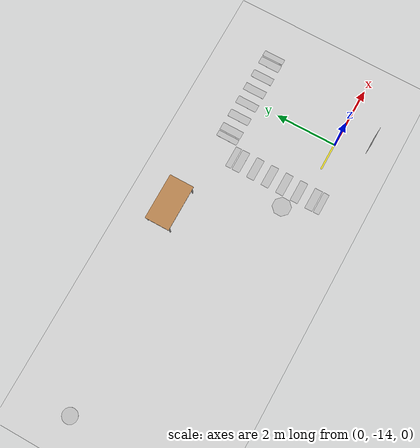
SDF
<sdf version="1.6">
 <world name="default">
  <model name="ground_plane">
   <static>1</static>
   <link name="link">
    <collision name="collision">
     <geometry><plane><normal>0 0 1</normal><size>100 100</size></plane></geometry>
     <surface><friction><ode><mu>100</mu><mu2>50</mu2></ode></friction></surface>
    </collision>
    <visual name="visual">
     <cast_shadows>0</cast_shadows>
     <geometry><plane><normal>0 0 1</normal><size>100 100</size></plane></geometry>
     <material>
      <script><uri>file://media/materials/scripts/gazebo.material</uri><name>Gazebo/Grey</name></script>
     </material>
    </visual>
   </link>
  </model>
  <model name="line2m_4">
   <link name="link_0">
    <inertial>
     <mass>1</mass>
     <inertia>
      <ixx>0.166667</ixx>
      <ixy>0</ixy>
      <ixz>0</ixz>
      <iyy>0.166667</iyy>
      <iyz>0</iyz>
      <izz>0.166667</izz>
     </inertia>
    </inertial>
    <visual name="visual">
     <geometry><box><size>2 0.05 0.001</size></box></geometry>
     <material>
      <lighting>1</lighting>
      <script><uri>file://media/materials/scripts/gazebo.material</uri><name>Gazebo/Yellow</name></script>
     </material>
    </visual>
   </link>
   <static>1</static>
   <pose>0.123613 -13.9727 0 0 -0 0</pose>
  </model>
  <model name="crosswalk_7">
   <link name="link_0">
    <inertial>
     <mass>1</mass>
     <inertia>
      <ixx>0.166667</ixx>
      <ixy>0</ixy>
      <ixz>0</ixz>
      <iyy>0.166667</iyy>
      <iyz>0</iyz>
      <izz>0.166667</izz>
     </inertia>
    </inertial>
    <visual name="visual">
     <pose>0.25 0 0 0 -0 0</pose>
     <geometry><box><size>0.25 0.7 0.001</size></box></geometry>
     <material><lighting>1</lighting></material>
    </visual>
    <visual name="ModelPreview_0::link_0::visual_1">
     <pose>0.75 0 0 0 -0 0</pose>
     <geometry><box><size>0.25 0.7 0.001</size></box></geometry>
     <material><lighting>1</lighting></material>
    </visual>
    <visual name="ModelPreview_0::link_0::visual_2">
     <pose>1.25 0 0 0 -0 0</pose>
     <geometry><box><size>0.25 0.7 0.001</size></box></geometry>
     <material><lighting>1</lighting></material>
    </visual>
    <visual name="ModelPreview_0::link_0::visual_3">
     <pose>-0.25 0 0 0 -0 0</pose>
     <geometry><box><size>0.25 0.7 0.001</size></box></geometry>
     <material><lighting>1</lighting></material>
    </visual>
    <visual name="ModelPreview_0::link_0::visual_4">
     <pose>-0.75 0 0 0 -0 0</pose>
     <geometry><box><size>0.25 0.7 0.001</size></box></geometry>
     <material><lighting>1</lighting></material>
    </visual>
    <visual name="ModelPreview_0::link_0::visual_5">
     <pose>-1.25 0 0 0 -0 0</pose>
     <geometry><box><size>0.25 0.7 0.001</size></box></geometry>
     <material><lighting>1</lighting></material>
    </visual>
    <visual name="ModelPreview_0::link_0::visual_6">
     <pose>-1.6 0.35 0 -1.5708 -0 -1.5708</pose>
     <geometry>
      <mesh><uri>model://crosswalk/model/Warning+sign+confined+space/model.dae</uri><scale>2.35 2 0.9</scale></mesh>
     </geometry>
    </visual>
    <visual name="ModelPreview_0::link_0::visual_7">
     <pose>1.6 -0.35 0 -1.5708 0 1.5708</pose>
     <geometry>
      <mesh><uri>model://crosswalk/model/Warning+sign+confined+space/model.dae</uri><scale>2.35 2 0.9</scale></mesh>
     </geometry>
     <material><lighting>1</lighting></material>
    </visual>
   </link>
   <static>1</static>
   <pose>0.13411 -10.9998 0 0 -0 0</pose>
  </model>
  <model name="crosswalk_10">
   <link name="link_0">
    <inertial>
     <mass>1</mass>
     <inertia>
      <ixx>0.166667</ixx>
      <ixy>0</ixy>
      <ixz>0</ixz>
      <iyy>0.166667</iyy>
      <iyz>0</iyz>
      <izz>0.166667</izz>
     </inertia>
    </inertial>
    <visual name="visual">
     <pose>0.25 0 0 0 -0 0</pose>
     <geometry><box><size>0.25 0.7 0.001</size></box></geometry>
     <material><lighting>1</lighting></material>
    </visual>
    <visual name="ModelPreview_0::link_0::visual_1">
     <pose>0.75 0 0 0 -0 0</pose>
     <geometry><box><size>0.25 0.7 0.001</size></box></geometry>
     <material><lighting>1</lighting></material>
    </visual>
    <visual name="ModelPreview_0::link_0::visual_2">
     <pose>1.25 0 0 0 -0 0</pose>
     <geometry><box><size>0.25 0.7 0.001</size></box></geometry>
     <material><lighting>1</lighting></material>
    </visual>
    <visual name="ModelPreview_0::link_0::visual_3">
     <pose>-0.25 0 0 0 -0 0</pose>
     <geometry><box><size>0.25 0.7 0.001</size></box></geometry>
     <material><lighting>1</lighting></material>
    </visual>
    <visual name="ModelPreview_0::link_0::visual_4">
     <pose>-0.75 0 0 0 -0 0</pose>
     <geometry><box><size>0.25 0.7 0.001</size></box></geometry>
     <material><lighting>1</lighting></material>
    </visual>
    <visual name="ModelPreview_0::link_0::visual_5">
     <pose>-1.25 0 0 0 -0 0</pose>
     <geometry><box><size>0.25 0.7 0.001</size></box></geometry>
     <material><lighting>1</lighting></material>
    </visual>
    <visual name="ModelPreview_0::link_0::visual_6">
     <pose>-1.6 0.35 0 -1.5708 -0 -1.5708</pose>
     <geometry>
      <mesh><uri>model://crosswalk/model/Warning+sign+confined+space/model.dae</uri><scale>2.35 2 0.9</scale></mesh>
     </geometry>
    </visual>
    <visual name="ModelPreview_0::link_0::visual_7">
     <pose>1.6 -0.35 0 -1.5708 0 1.5708</pose>
     <geometry>
      <mesh><uri>model://crosswalk/model/Warning+sign+confined+space/model.dae</uri><scale>2.35 2 0.9</scale></mesh>
     </geometry>
     <material><lighting>1</lighting></material>
    </visual>
   </link>
   <static>1</static>
   <pose>-1.83967 -12.9687 0 0 -0 1.5708</pose>
  </model>
  <model name="stopSign_7">
   <link name="link_0">
    <inertial>
     <mass>1</mass>
     <inertia><ixx>0.145833</ixx><ixy>0</ixy><ixz>0</ixz><iyy>0.145833</iyy><iyz>0</iyz><izz>0.125</izz></inertia>
    </inertial>
    <visual name="visual">
     <geometry><mesh><uri>model://stopSign/model/model.dae</uri><scale>1 1 0.1</scale></mesh></geometry>
     <material><lighting>1</lighting></material>
    </visual>
   </link>
   <static>1</static>
   <pose>-2.77388 -13.1988 0 0 0 -1.5708</pose>
  </model>
  <model name="noForklift">
   <link name="link_3">
    <inertial>
     <mass>1</mass>
     <inertia>
      <ixx>0.166667</ixx>
      <ixy>0</ixy>
      <ixz>0</ixz>
      <iyy>0.166667</iyy>
      <iyz>0</iyz>
      <izz>0.166667</izz>
     </inertia>
    </inertial>
    <visual name="ModelPreview_6::link_3::visual_9">
     <pose>-0.08 -0.31 0 0 -0 1</pose>
     <geometry>
      <mesh><uri>model://noForklift/model/model.dae</uri><scale>0.266 0.266 0.266</scale></mesh>
     </geometry>
     <material><lighting>1</lighting></material>
    </visual>
    <collision name="collision_9">
     <geometry><cylinder><radius>0.25</radius><length>0.001</length></cylinder></geometry>
     <surface>
      <friction>
       <ode><mu>1</mu><mu2>1</mu2><fdir1>0 0 0</fdir1><slip1>0</slip1><slip2>0</slip2></ode>
       <torsional>
        <coefficient>1</coefficient>
        <patch_radius>0</patch_radius>
        <surface_radius>0</surface_radius>
        <use_patch_radius>1</use_patch_radius>
        <ode><slip>0</slip></ode>
       </torsional>
      </friction>
      <bounce><restitution_coefficient>0</restitution_coefficient><threshold>1e+06</threshold></bounce>
      <contact>
       <collide_without_contact>0</collide_without_contact>
       <collide_without_contact_bitmask>1</collide_without_contact_bitmask>
       <collide_bitmask>1</collide_bitmask>
       <ode>
        <soft_cfm>0</soft_cfm>
        <soft_erp>0.2</soft_erp>
        <kp>1e+13</kp>
        <kd>1</kd>
        <max_vel>0.01</max_vel>
        <min_depth>0</min_depth>
       </ode>
       <bullet>
        <split_impulse>1</split_impulse>
        <split_impulse_penetration_threshold>-0.01</split_impulse_penetration_threshold>
        <soft_cfm>0</soft_cfm>
        <soft_erp>0.2</soft_erp>
        <kp>1e+13</kp>
        <kd>1</kd>
       </bullet>
      </contact>
     </surface>
    </collision>
   </link>
   <static>1</static>
   <pose>-10.83 -11.2276 0 0 0 -1.5708</pose>
  </model>
  <model name="table_4">
   <static>1</static>
   <link name="link">
    <collision name="surface">
     <pose>0 0 1 0 -0 0</pose>
     <geometry><box><size>1.5 0.8 0.03</size></box></geometry>
     <surface><friction><ode><mu>0.6</mu><mu2>0.6</mu2></ode></friction></surface>
    </collision>
    <visual name="visual1">
     <pose>0 0 1 0 -0 0</pose>
     <geometry><box><size>1.5 0.8 0.03</size></box></geometry>
     <material>
      <script><uri>file://media/materials/scripts/gazebo.material</uri><name>Gazebo/Wood</name></script>
     </material>
    </visual>
    <collision name="front_left_leg">
     <pose>0.68 0.38 0.5 0 -0 0</pose>
     <geometry><cylinder><radius>0.02</radius><length>1</length></cylinder></geometry>
    </collision>
    <visual name="front_left_leg">
     <pose>0.68 0.38 0.5 0 -0 0</pose>
     <geometry><cylinder><radius>0.02</radius><length>1</length></cylinder></geometry>
     <material>
      <script><uri>file://media/materials/scripts/gazebo.material</uri><name>Gazebo/Grey</name></script>
     </material>
    </visual>
    <collision name="front_right_leg">
     <pose>0.68 -0.38 0.5 0 -0 0</pose>
     <geometry><cylinder><radius>0.02</radius><length>1</length></cylinder></geometry>
    </collision>
    <visual name="front_right_leg">
     <pose>0.68 -0.38 0.5 0 -0 0</pose>
     <geometry><cylinder><radius>0.02</radius><length>1</length></cylinder></geometry>
     <material>
      <script><uri>file://media/materials/scripts/gazebo.material</uri><name>Gazebo/Grey</name></script>
     </material>
    </visual>
    <collision name="back_right_leg">
     <pose>-0.68 -0.38 0.5 0 -0 0</pose>
     <geometry><cylinder><radius>0.02</radius><length>1</length></cylinder></geometry>
    </collision>
    <visual name="back_right_leg">
     <pose>-0.68 -0.38 0.5 0 -0 0</pose>
     <geometry><cylinder><radius>0.02</radius><length>1</length></cylinder></geometry>
     <material>
      <script><uri>file://media/materials/scripts/gazebo.material</uri><name>Gazebo/Grey</name></script>
     </material>
    </visual>
    <collision name="back_left_leg">
     <pose>-0.68 0.38 0.5 0 -0 0</pose>
     <geometry><cylinder><radius>0.02</radius><length>1</length></cylinder></geometry>
    </collision>
    <visual name="back_left_leg">
     <pose>-0.68 0.38 0.5 0 -0 0</pose>
     <geometry><cylinder><radius>0.02</radius><length>1</length></cylinder></geometry>
     <material>
      <script><uri>file://media/materials/scripts/gazebo.material</uri><name>Gazebo/Grey</name></script>
     </material>
    </visual>
   </link>
   <pose>-4.10578 -10.54 -0.5 0 -0 0</pose>
  </model>
  <model name="120x90sign_sitesafety_0">
   <link name="link_0">
    <inertial>
     <mass>1</mass>
     <inertia>
      <ixx>0.166667</ixx>
      <ixy>0</ixy>
      <ixz>0</ixz>
      <iyy>0.166667</iyy>
      <iyz>0</iyz>
      <izz>0.166667</izz>
     </inertia>
    </inertial>
    <visual name="visual">
     <pose>-0.3 0 -0.45 0 -0 0</pose>
     <geometry>
      <mesh><uri>model://120x90sign_sitesafety/model/model.dae</uri><scale>2 1 4.4</scale></mesh>
     </geometry>
     <material><lighting>1</lighting></material>
    </visual>
    <collision name="collision">
     <geometry><box><size>0.6 0.005 0.9</size></box></geometry>
     <surface>
      <friction>
       <ode><mu>1</mu><mu2>1</mu2><fdir1>0 0 0</fdir1><slip1>0</slip1><slip2>0</slip2></ode>
       <torsional>
        <coefficient>1</coefficient>
        <patch_radius>0</patch_radius>
        <surface_radius>0</surface_radius>
        <use_patch_radius>1</use_patch_radius>
        <ode><slip>0</slip></ode>
       </torsional>
      </friction>
      <bounce><restitution_coefficient>0</restitution_coefficient><threshold>1e+06</threshold></bounce>
      <contact>
       <collide_without_contact>0</collide_without_contact>
       <collide_without_contact_bitmask>1</collide_without_contact_bitmask>
       <collide_bitmask>1</collide_bitmask>
       <ode>
        <soft_cfm>0</soft_cfm>
        <soft_erp>0.2</soft_erp>
        <kp>1e+13</kp>
        <kd>1</kd>
        <max_vel>0.01</max_vel>
        <min_depth>0</min_depth>
       </ode>
       <bullet>
        <split_impulse>1</split_impulse>
        <split_impulse_penetration_threshold>-0.01</split_impulse_penetration_threshold>
        <soft_cfm>0</soft_cfm>
        <soft_erp>0.2</soft_erp>
        <kp>1e+13</kp>
        <kd>1</kd>
       </bullet>
      </contact>
     </surface>
    </collision>
   </link>
   <static>1</static>
   <pose>0.170756 -14.9212 1.25 0 0 -3.14159</pose>
  </model>
 </world>
</sdf>
